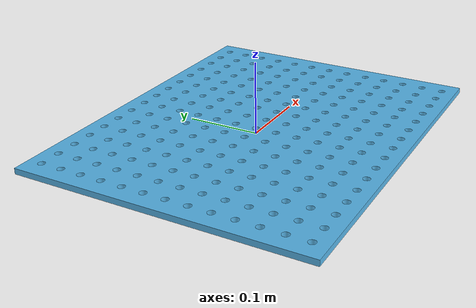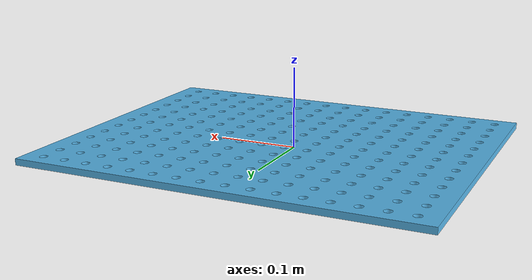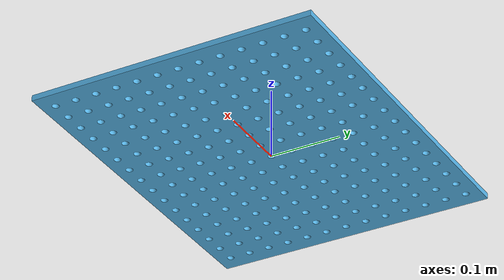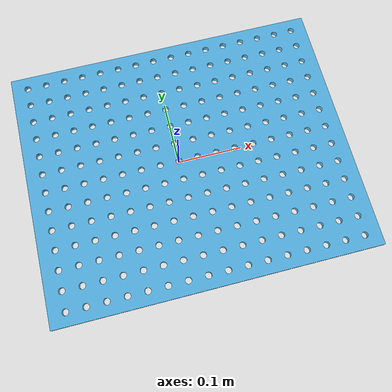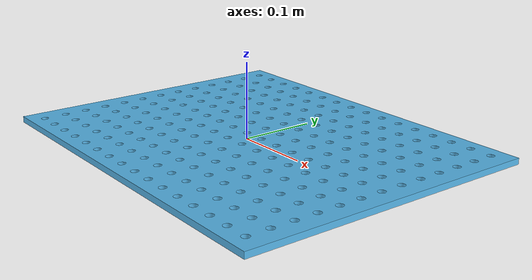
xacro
<?xml version="1.0" ?>
<robot name="pallet" xmlns:xacro="http://www.ros.org/wiki/xacro">

<link name="base_link" />

<joint name="base_joint" type="fixed">
  <parent link="base_link"/>
  <child link="base_body" />
  <origin xyz="0 0 0" rpy="0 0 0"/>
</joint>

<link name="base_body">
  <inertial>
    <origin xyz="0.02 0.00 0.00" rpy="0 0 0"/>
    <mass value="3.96714"/>
    <inertia ixx="0.00005324" ixy="0.00000000" ixz="0.00000024"
             iyy="0.00008423" iyz="0.00000000"
             izz="0.00013729"/>
  </inertial>
  <visual>
    <origin xyz="0 0 0" rpy="0 0 0"/>
    <geometry>
      <mesh filename="package://mecanumrover_description/meshes/pallet.STL"/>
    </geometry>

  </visual>
  <collision>
    <origin xyz="0 0 0" rpy="0 0 0"/>
    <geometry>
      <mesh filename="package://mecanumrover_description/meshes/pallet.STL"/>
    </geometry>
  </collision>
</link>

</robot>
